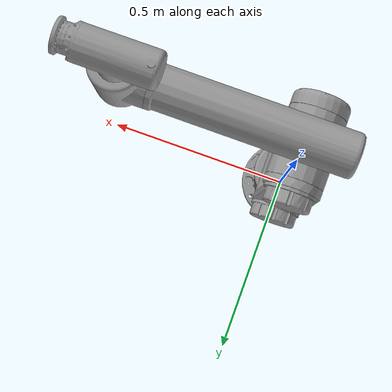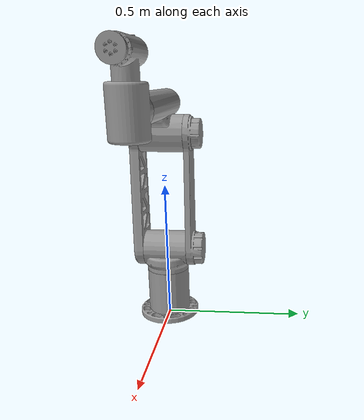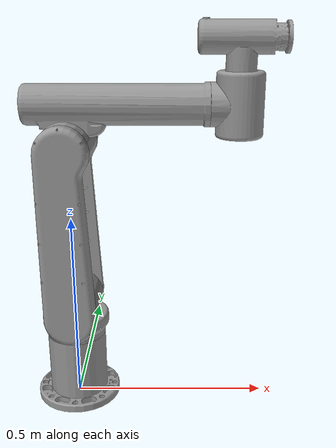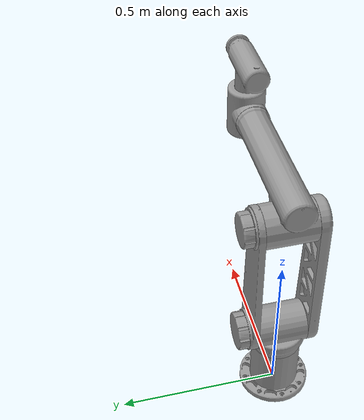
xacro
<?xml version="1.0" ?>
<robot name = "indyrp" xmlns:xacro="http://ros.org/wiki/xacro">
	<xacro:include filename="$(find indyrp_description)/urdf/materials.xacro" />
	<xacro:property name="PI" value="3.1415926535897931"/>
	<xacro:property name="indy_material" value="metal_grey"/>

	<link name = "ground" />
    <link name = "link0">
        <visual>
            <origin xyz = "0 0 0" rpy = "0 0 0"/>
           	<geometry>
				<mesh filename="package://indyrp_description/meshes/stl/IndyRP_0.stl" />
			</geometry>
			<material name="${indy_material}"/>
        </visual>
         <collision>
            <origin xyz="0 0 0" rpy="0 0 0"/>
           	<geometry>
				<mesh filename="package://indyrp_description/meshes/stl/IndyRP_0.stl" />
			</geometry>
        </collision>
         <inertial>
            <origin xyz="0 0 0" rpy="0 0 0"/>
            <mass value="5.59800930" />
            <inertia ixx="0.03168210" iyy="0.03138407" izz="0.01729349" ixy="-0.00002297" iyz="0.00001722" ixz="-0.00046833"/>
        </inertial>
    </link>

     <link name = "link1">
        <visual>
            <origin xyz = "0 0 0" rpy = "0 0 0"/>
           	<geometry>
				<mesh filename="package://indyrp_description/meshes/stl/IndyRP_1.stl" />
			</geometry>
			<material name="${indy_material}"/>
        </visual>
         <collision>
            <origin xyz="0 0 0" rpy="0 0 0"/>
           	<geometry>
				<mesh filename="package://indyrp_description/meshes/stl/IndyRP_1.stl" />
			</geometry>
        </collision>
         <inertial>
            <origin xyz="0 0 0" rpy="0 0 0"/>
            <mass value="4.72201812" />
            <inertia ixx="0.02108002" iyy="0.01030922" izz="0.02187573" ixy="0.00000028" iyz="0.00090083" ixz="0.00000135" />
        </inertial>
    </link>

    <link name = "link2">
        <visual>
            <origin xyz = "0 0 0" rpy = "0 0 0"/>
           	<geometry>
				<mesh filename="package://indyrp_description/meshes/stl/IndyRP_2.stl" />
			</geometry>
			<material name="${indy_material}"/>
        </visual>
         <collision>
            <origin xyz="0 0 0" rpy="0 0 0"/>
           	<geometry>
				<mesh filename="package://indyrp_description/meshes/stl/IndyRP_2.stl" />
			</geometry>
        </collision>
         <inertial>
            <origin xyz="0 0 0" rpy="0 0 0"/>
            <mass value="6.17608031" />
            <inertia ixx="0.21693693" iyy="0.16765616" izz="0.06791448" ixy="-0.00032160" iyz="-0.00138650" ixz="-0.00172838"/>
        </inertial>
    </link>

    <link name = "link3">
    	<visual>
            <origin xyz = "0 0 0" rpy = "0 0 0"/>
           	<geometry>
				<mesh filename="package://indyrp_description/meshes/stl/IndyRP_3.stl" />
			</geometry>
			<material name="${indy_material}"/>
        </visual>
         <collision>
            <origin xyz="0 0 0" rpy="0 0 0"/>
           	<geometry>
				<mesh filename="package://indyrp_description/meshes/stl/IndyRP_3.stl" />
			</geometry>
        </collision>
         <inertial>
            <origin xyz="0 0 0" rpy="0 0 0"/>
            <mass value="6.54934398" />
            <inertia ixx="0.03351822" iyy="0.04667803" izz="0.04212738" ixy="-0.00106877" iyz="-0.00474420" ixz="0.00317186"/>
        </inertial>
    </link>

    <link name = "link4">
    	<visual>
            <origin xyz = "0 0 0" rpy = "0 0 0"/>
           	<geometry>
				<mesh filename="package://indyrp_description/meshes/stl/IndyRP_4.stl" />
			</geometry>
			<material name="${indy_material}"/>
        </visual>
         <collision>
            <origin xyz="0 0 0" rpy="0 0 0"/>
           	<geometry>
				<mesh filename="package://indyrp_description/meshes/stl/IndyRP_4.stl" />
			</geometry>
        </collision>
         <inertial>
            <origin xyz="0 0 0" rpy="0 0 0"/>
            <mass value="1.92396795" />
            <inertia ixx="0.00429949" iyy="0.02468357" izz="0.02325623" ixy="-0.00005294" iyz="-0.00000475" ixz="-0.00049892"/>
        </inertial>
    </link>

    <link name = "link5">
    	<visual>
            <origin xyz = "0 0 0" rpy = "0 0 0"/>
           	<geometry>
				<mesh filename="package://indyrp_description/meshes/stl/IndyRP_5.stl" />
			</geometry>
			<material name="${indy_material}"/>
        </visual>
         <collision>
            <origin xyz="0 0 0" rpy="0 0 0"/>
           	<geometry>
				<mesh filename="package://indyrp_description/meshes/stl/IndyRP_5.stl" />
			</geometry>
        </collision>
         <inertial>
            <origin xyz="0 0 0" rpy="0 0 0"/>
            <mass value="3.30989986" />
            <inertia ixx="0.02267898" iyy="0.02815802" izz="0.00751991" ixy="-0.00006355" iyz="0.00010380" ixz="0.00175079"/>
        </inertial>
    </link>

    <link name = "link6">
    	<visual>
            <origin xyz = "0 0 0" rpy = "0 0 0"/>
           	<geometry>
				<mesh filename="package://indyrp_description/meshes/stl/IndyRP_6.stl" />
			</geometry>
			<material name="${indy_material}"/>
        </visual>
         <collision>
            <origin xyz="0 0 0" rpy="0 0 0"/>
           	<geometry>
				<mesh filename="package://indyrp_description/meshes/stl/IndyRP_6.stl" />
			</geometry>
        </collision>
         <inertial>
            <origin xyz="0 0 0" rpy="0 0 0"/>
            <mass value="0.0913" />
            <inertia ixx="0.0001" iyy="0.0001" izz="0.0001" ixy="0.0" iyz="0.0" ixz="0.0"/>
        </inertial>
    </link>
    <link name = "tcp" />

    <joint name = "global" type = "fixed">
    	<parent link = "ground"/>
    	<child link = "link0"/>
    	<origin xyz = "0 0 0" rpy = "0 0 0"/>
    </joint>

    <joint name = "joint0" type = "continuous">
    	<parent link = "link0"/>
    	<child link = "link1"/>
    	<origin xyz = "0 -0 0.1834" rpy = "0 0 0"/>
    	<axis xyz = "0 0 1"/>
    </joint>

    <joint name = "joint1" type = "continuous">
    	<parent link = "link1"/>
    	<child link = "link2"/>
    	<origin xyz = "0 0.098 0.08" rpy = "-${PI/2} 0 0"/>
    	<axis xyz = "0 0 1"/>
    </joint>

    <joint name = "joint2" type = "continuous">
    	<parent link = "link2"/>
    	<child link = "link3"/>
    	<origin xyz = "0.0 -0.4250 0.0" rpy = "0 0 0"/>
    	<axis xyz = "0 0 1"/>
    </joint>

    <joint name = "joint3" type = "continuous">
    	<parent link = "link3"/>
    	<child link = "link4"/>
    	<origin xyz = "0.3445 -0.1 -0.098" rpy = "${PI/2} 0 ${PI/2}"/>
    	<axis xyz = "0 0 1"/>
    </joint>

    <joint name = "joint4" type = "continuous">
    	<parent link = "link4"/>
    	<child link = "link5"/>
    	<origin xyz = "-0.078 0.0 0.071" rpy = "0 -${PI/2} 0"/>
    	<axis xyz = "0 0 1"/>
    </joint>

    <joint name = "joint5" type = "continuous">
    	<parent link = "link5"/>
    	<child link = "link6"/>
    	<origin xyz = "0.0643 0.0 0.0749" rpy = "0 ${PI/2} 0"/>
    	<axis xyz = "0 0 1"/>
    </joint>

    <joint name = "tcp" type = "fixed">
    	<parent link = "link6"/>
    	<child link = "tcp"/>
    	<origin xyz = "0 0 0.045" rpy = "0 0 0"/>
    </joint>

</robot>
